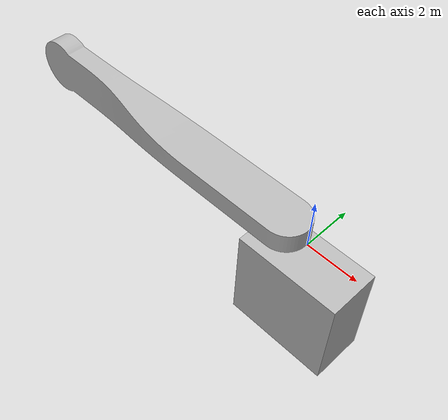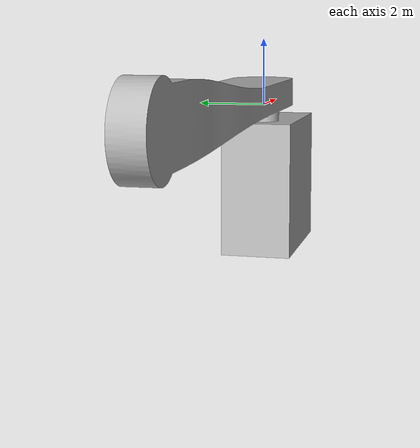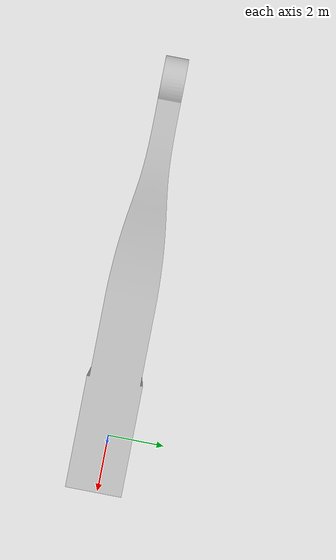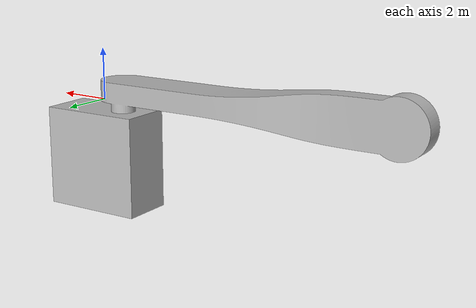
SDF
<?xml version='1.0'?>
<sdf version="1.4">
  <model name="my_model">
    <pose>0 0 0.5 0 0 0</pose>
    <static>true</static>
    <link name="link">
      <inertial>
        <mass>1.0</mass>
        <inertia> <!-- inertias are tricky to compute -->
          <!-- http://gazebosim.org/tutorials?tut=inertia&cat=build_robot -->f
          <ixx>4</ixx>       <!-- for a box: ixx = 0.083 * mass * (y*y + z*z) -->
          <ixy>0.0</ixy>         <!-- for a box: ixy = 0 -->
          <ixz>0.0</ixz>         <!-- for a box: ixz = 0 -->
          <iyy>4</iyy>       <!-- for a box: iyy = 0.083 * mass * (x*x + z*z) -->
          <iyz>0.0</iyz>         <!-- for a box: iyz = 0 -->
          <izz>4</izz>       <!-- for a box: izz = 0.083 * mass * (x*x + y*y) -->
        </inertia>
      </inertial>
      <collision name="collision">
        <geometry>
          <mesh>
            <uri>model://my_robot/r_arm.dae</uri>
          </mesh>
        </geometry>
      </collision>
      <visual name="visual">
        <geometry>
          <mesh>
            <uri>model://my_robot/r_arm.dae</uri>
	    <scale>1 1 1</scale>
          </mesh>
        </geometry>
      </visual>
    </link>
  </model>
</sdf>

<!--15.7,2.05,5.91(cm)
1.24 g/cm³
-->
